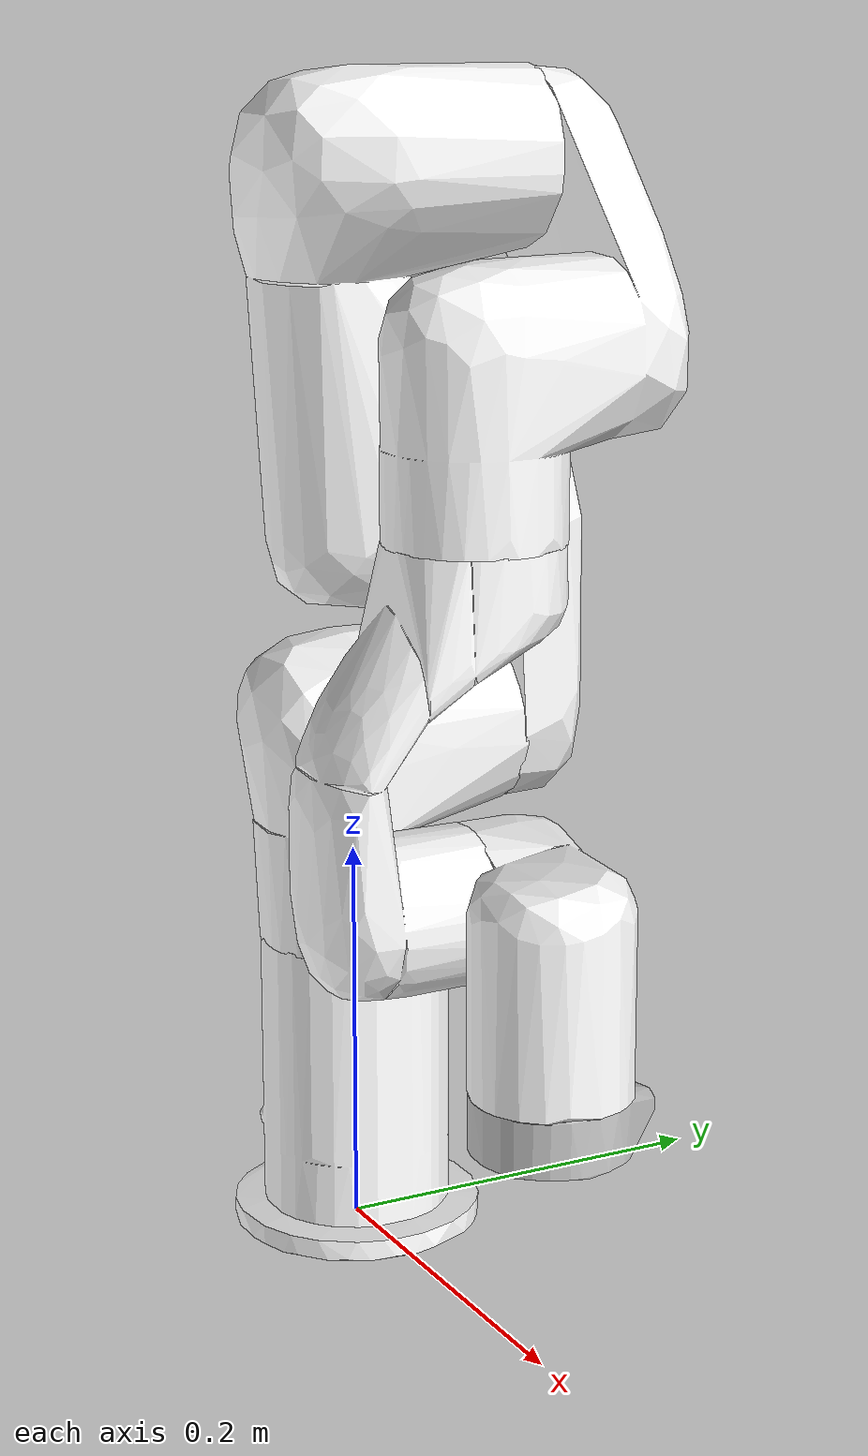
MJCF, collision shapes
<mujoco model="xarm6">
  <asset>
    <mesh name="base" file="meshes/xarm6/visual/base.stl" />
    <mesh name="base_vhacd" file="meshes/xarm6/collision/base_vhacd.obj" />
    <mesh name="link1" file="meshes/xarm6/visual/link1.stl" />
    <mesh name="link1_vhacd" file="meshes/xarm6/collision/link1_vhacd.obj" />
    <mesh name="link2" file="meshes/xarm6/visual/link2.stl" />
    <mesh name="link2_vhacd" file="meshes/xarm6/collision/link2_vhacd.obj" />
    <mesh name="link3" file="meshes/xarm6/visual/link3.stl" />
    <mesh name="link3_vhacd" file="meshes/xarm6/collision/link3_vhacd.obj" />
    <mesh name="link4" file="meshes/xarm6/visual/link4.stl" />
    <mesh name="link4_vhacd" file="meshes/xarm6/collision/link4_vhacd.obj" />
    <mesh name="link5" file="meshes/xarm6/visual/link5.stl" />
    <mesh name="link5_vhacd" file="meshes/xarm6/collision/link5_vhacd.obj" />
    <mesh name="link6" file="meshes/xarm6/visual/link6.stl" />
    <mesh name="link6_vhacd" file="meshes/xarm6/collision/link6_vhacd.obj" />
  </asset>
  <actuator>
    <motor ctrllimited="true" ctrlrange="-163 163" joint="joint1" name="torq_j1" />
    <motor ctrllimited="true" ctrlrange="-163 163" joint="joint2" name="torq_j2" />
    <motor ctrllimited="true" ctrlrange="-81 81" joint="joint3" name="torq_j3" />
    <motor ctrllimited="true" ctrlrange="-81 81" joint="joint4" name="torq_j4" />
    <motor ctrllimited="true" ctrlrange="-30.6 30.6" joint="joint5" name="torq_j5" />
    <motor ctrllimited="true" ctrlrange="-30.6 30.6" joint="joint6" name="torq_j6" />
  </actuator>
  <worldbody>
    <body name="base">
      <camera mode="fixed" name="robotview" pos="1.0 0 0.4" quat="0.653 0.271 0.271 0.653" />
      <inertial pos="0 0 0.09103" quat="0.981065 0.000747228 -0.0021866 -0.193666" mass="2.7" diaginertia="0.00495024 0.00494031 0.00221894" />
      <geom type="mesh" contype="0" conaffinity="0" group="1" density="0" rgba="1 1 1 1" mesh="base" />
      <geom type="mesh" rgba="1 1 1 1" mesh="base_vhacd" />
      <body name="link1" pos="0 0 0.267">
        <inertial pos="-0.002 0.02692 -0.01332" quat="0.983139 0.180751 -0.00455228 0.0272976" mass="2.16" diaginertia="0.00539487 0.00519906 0.00281397" />
        <joint name="joint1" pos="0 0 0" axis="0 0 1" range="-6.28319 6.28319" actuatorfrcrange="-163 163" damping="0.001" frictionloss="0.01" armature="0.1" />
        <geom type="mesh" contype="0" conaffinity="0" group="1" density="0" rgba="1 1 1 1" mesh="link1" />
        <geom type="mesh" rgba="1 1 1 1" mesh="link1_vhacd" />
        <body name="link2" quat="0.707105 -0.707108 0 0">
          <inertial pos="0.03531 -0.21398 0.03386" quat="0.71118 0.614686 0.139936 -0.311132" mass="1.71" diaginertia="0.017867 0.017867 0.017867" />
          <joint name="joint2" pos="0 0 0" axis="0 0 1" range="-2.059 2.0944" actuatorfrcrange="-163 163" damping="0.001" frictionloss="0.01" armature="0.1" />
          <geom type="mesh" contype="0" conaffinity="0" group="1" density="0" rgba="1 1 1 1" mesh="link2" />
          <geom type="mesh" rgba="1 1 1 1" mesh="link2_vhacd" />
          <body name="link3" pos="0.0535 -0.2845 0">
            <inertial pos="0.06781 0.10749 0.01457" quat="0.119516 0.409082 -0.734824 0.527638" mass="1.384" diaginertia="0.004543 0.004543 0.004543" />
            <joint name="joint3" pos="0 0 0" axis="0 0 1" range="-3.927 0.19198" actuatorfrcrange="-81 81" damping="0.001" frictionloss="0.01" armature="0.1" />
            <geom type="mesh" contype="0" conaffinity="0" group="1" density="0" rgba="1 1 1 1" mesh="link3" />
            <geom type="mesh" rgba="1 1 1 1" mesh="link3_vhacd" />
            <body name="link4" pos="0.0775 0.3425 0" quat="0.707105 -0.707108 0 0">
              <inertial pos="-0.00021 0.02578 -0.02538" quat="0.994019 0.0752563 -0.00686804 0.0788347" mass="1.115" diaginertia="0.00440091 0.00406855 0.00103407" />
              <joint name="joint4" pos="0 0 0" axis="0 0 1" range="-6.28319 6.28319" actuatorfrcrange="-81 81" damping="0.001" frictionloss="0.01" armature="0.1" />
              <geom type="mesh" contype="0" conaffinity="0" group="1" density="0" rgba="1 1 1 1" mesh="link4" />
              <geom type="mesh" rgba="1 1 1 1" mesh="link4_vhacd" />
              <body name="link5" quat="0.707105 0.707108 0 0">
                <inertial pos="0.05428 0.01781 0.00543" quat="-0.0766302 0.578118 -0.269638 0.766291" mass="1.275" diaginertia="0.00289757 0.0023276 0.000951789" />
                <joint name="joint5" pos="0 0 0" axis="0 0 1" range="-1.69297 3.14159" actuatorfrcrange="-30.6 30.6" damping="0.001" frictionloss="0.01" armature="0.1" />
                <geom type="mesh" contype="0" conaffinity="0" group="1" density="0" rgba="1 1 1 1" mesh="link5" />
                <geom type="mesh" rgba="1 1 1 1" mesh="link5_vhacd" />
                <body name="link6" pos="0.076 0.097 0" quat="0.707105 -0.707108 0 0">
                  <inertial pos="0 0.00064 -0.00952" quat="0 0.707107 0 0.707107" mass="0.1096" diaginertia="7.9715e-05 4.8111e-05 4.5293e-05" />
                  <joint name="joint6" pos="0 0 0" axis="0 0 1" range="-6.28319 6.28319" actuatorfrcrange="-30.6 30.6" damping="0.001" frictionloss="0.01" armature="0.1" />
                  <geom type="mesh" contype="0" conaffinity="0" group="1" density="0" rgba="0.753 0.753 0.753 1" mesh="link6" />
                  <geom type="mesh" rgba="0.753 0.753 0.753 1" mesh="link6_vhacd" />
                  <body name="right_hand" pos="0 0 0" quat="1 0 0 0">
                    <camera mode="fixed" name="eye_in_hand" pos="0.05 0 0" quat="0 0.707108 0.707108 0" fovy="75" />
                  </body>
                </body>
              </body>
            </body>
          </body>
        </body>
      </body>
    </body>
  </worldbody>
</mujoco>
